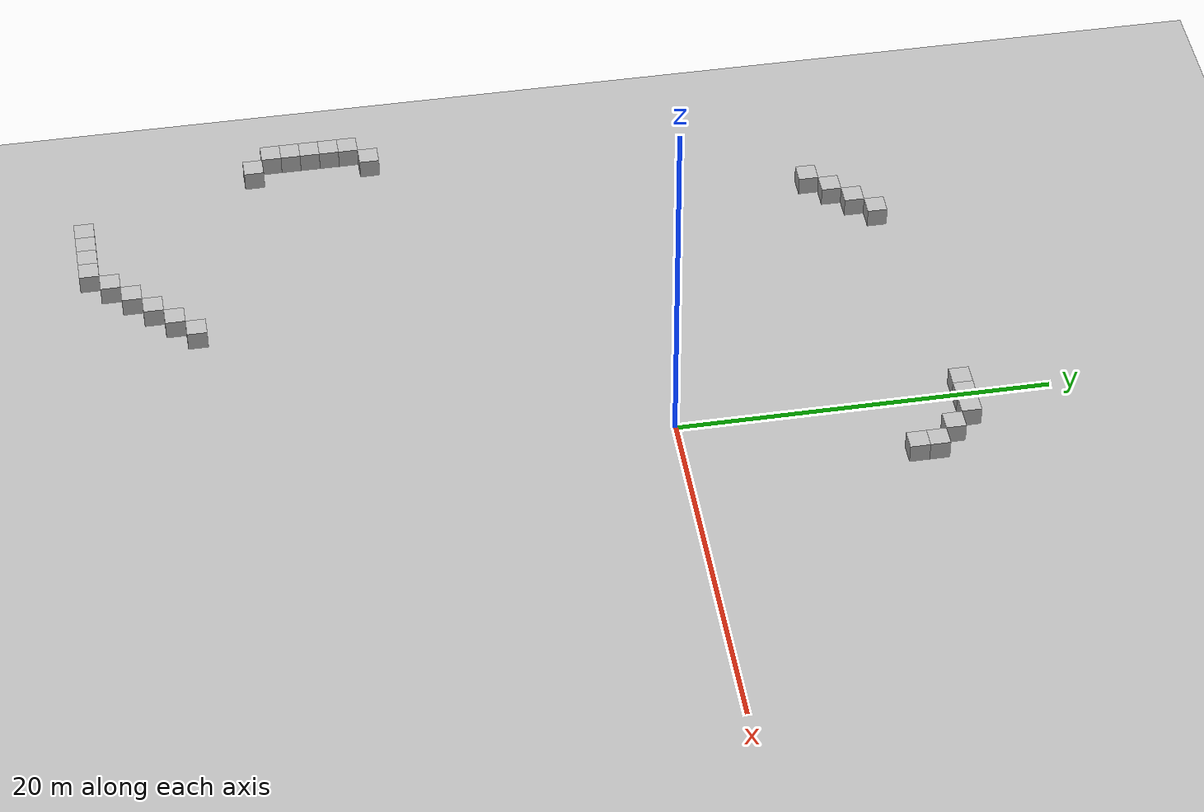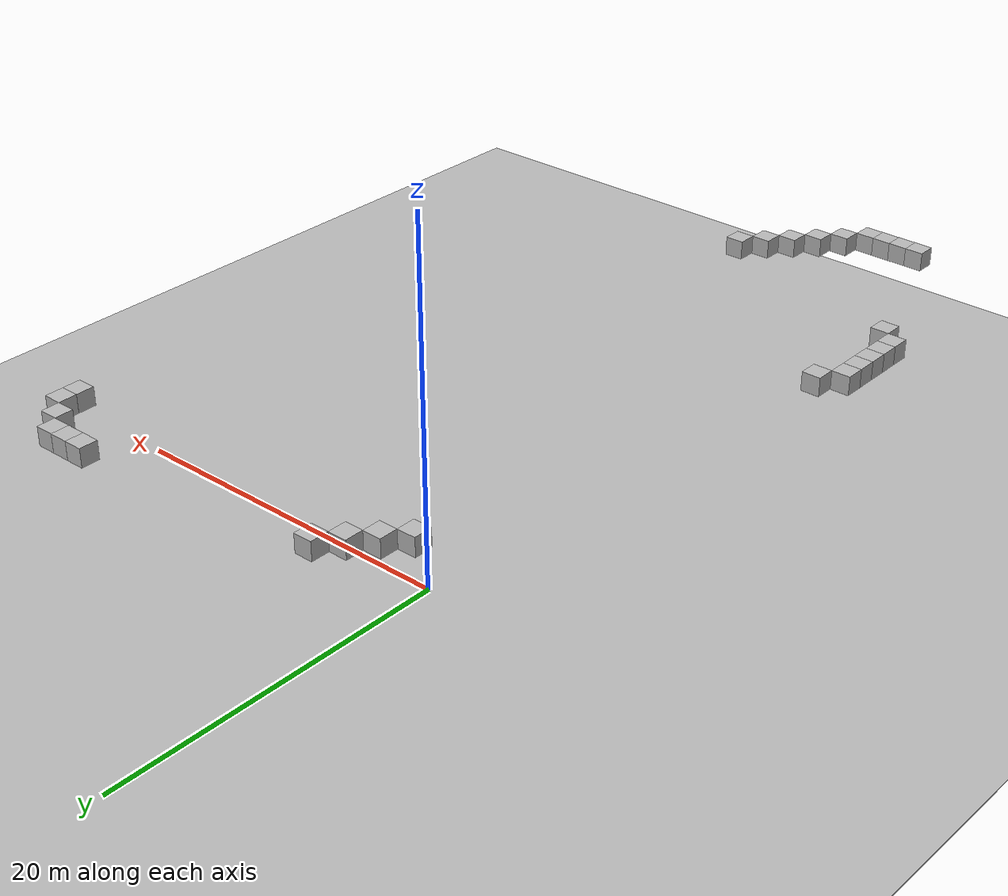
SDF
<sdf version="1.5">
 <world name="default">
  <include><uri>model://sun</uri></include>
  <include><uri>model://floor0</uri></include>
  <model name="obstacle0_1">
   <pose>-4 11 10 0 0 0</pose>
   <link name="obstacle0_1">
    <visual name="visual">
     <geometry><box><size>1 1 1</size></box></geometry>
     <material>
      <script>
       <uri>model://floor0/materials/scripts</uri>
       <uri>model://floor0/materials/textures</uri>
       <name>vrc/floor0</name>
      </script>
     </material>
    </visual>
    <collision name="collision"><geometry><box><size>1 1 1</size></box></geometry></collision>
   </link>
  </model>
  <model name="obstacle0_0">
   <pose>-5 10 10 0 0 0</pose>
   <link name="obstacle0_0">
    <visual name="visual">
     <geometry><box><size>1 1 1</size></box></geometry>
     <material>
      <script>
       <uri>model://floor0/materials/scripts</uri>
       <uri>model://floor0/materials/textures</uri>
       <name>vrc/floor0</name>
      </script>
     </material>
    </visual>
    <collision name="collision"><geometry><box><size>1 1 1</size></box></geometry></collision>
   </link>
  </model>
  <model name="obstacle0_2">
   <pose>-6 9 10 0 0 0</pose>
   <link name="obstacle0_2">
    <visual name="visual">
     <geometry><box><size>1 1 1</size></box></geometry>
     <material>
      <script>
       <uri>model://floor0/materials/scripts</uri>
       <uri>model://floor0/materials/textures</uri>
       <name>vrc/floor0</name>
      </script>
     </material>
    </visual>
    <collision name="collision"><geometry><box><size>1 1 1</size></box></geometry></collision>
   </link>
  </model>
  <model name="obstacle0_3">
   <pose>-7 8 10 0 0 0</pose>
   <link name="obstacle0_3">
    <visual name="visual">
     <geometry><box><size>1 1 1</size></box></geometry>
     <material>
      <script>
       <uri>model://floor0/materials/scripts</uri>
       <uri>model://floor0/materials/textures</uri>
       <name>vrc/floor0</name>
      </script>
     </material>
    </visual>
    <collision name="collision"><geometry><box><size>1 1 1</size></box></geometry></collision>
   </link>
  </model>
  <model name="obstacle1_0">
   <pose>9 12.5 10 0 0 0</pose>
   <link name="obstacle1_0">
    <visual name="visual">
     <geometry><box><size>1 1 1</size></box></geometry>
     <material>
      <script>
       <uri>model://floor0/materials/scripts</uri>
       <uri>model://floor0/materials/textures</uri>
       <name>vrc/floor0</name>
      </script>
     </material>
    </visual>
    <collision name="collision"><geometry><box><size>1 1 1</size></box></geometry></collision>
   </link>
  </model>
  <model name="obstacle1_1">
   <pose>10 12.5 10 0 0 0</pose>
   <link name="obstacle1_1">
    <visual name="visual">
     <geometry><box><size>1 1 1</size></box></geometry>
     <material>
      <script>
       <uri>model://floor0/materials/scripts</uri>
       <uri>model://floor0/materials/textures</uri>
       <name>vrc/floor0</name>
      </script>
     </material>
    </visual>
    <collision name="collision"><geometry><box><size>1 1 1</size></box></geometry></collision>
   </link>
  </model>
  <model name="obstacle1_2">
   <pose>11 12.5 10 0 0 0</pose>
   <link name="obstacle1_2">
    <visual name="visual">
     <geometry><box><size>1 1 1</size></box></geometry>
     <material>
      <script>
       <uri>model://floor0/materials/scripts</uri>
       <uri>model://floor0/materials/textures</uri>
       <name>vrc/floor0</name>
      </script>
     </material>
    </visual>
    <collision name="collision"><geometry><box><size>1 1 1</size></box></geometry></collision>
   </link>
  </model>
  <model name="obstacle1_3">
   <pose>12 11.5 10 0 0 0</pose>
   <link name="obstacle1_3">
    <visual name="visual">
     <geometry><box><size>1 1 1</size></box></geometry>
     <material>
      <script>
       <uri>model://floor0/materials/scripts</uri>
       <uri>model://floor0/materials/textures</uri>
       <name>vrc/floor0</name>
      </script>
     </material>
    </visual>
    <collision name="collision"><geometry><box><size>1 1 1</size></box></geometry></collision>
   </link>
  </model>
  <model name="obstacle1_4">
   <pose>13 10.5 10 0 0 0</pose>
   <link name="obstacle1_4">
    <visual name="visual">
     <geometry><box><size>1 1 1</size></box></geometry>
     <material>
      <script>
       <uri>model://floor0/materials/scripts</uri>
       <uri>model://floor0/materials/textures</uri>
       <name>vrc/floor0</name>
      </script>
     </material>
    </visual>
    <collision name="collision"><geometry><box><size>1 1 1</size></box></geometry></collision>
   </link>
  </model>
  <model name="obstacle1_5">
   <pose>13 9.5 10 0 0 0</pose>
   <link name="obstacle1_5">
    <visual name="visual">
     <geometry><box><size>1 1 1</size></box></geometry>
     <material>
      <script>
       <uri>model://floor0/materials/scripts</uri>
       <uri>model://floor0/materials/textures</uri>
       <name>vrc/floor0</name>
      </script>
     </material>
    </visual>
    <collision name="collision"><geometry><box><size>1 1 1</size></box></geometry></collision>
   </link>
  </model>
  <model name="obstacle2_0">
   <pose>-0.5 -24.25 10 0 0 0</pose>
   <link name="obstacle2_0">
    <visual name="visual">
     <geometry><box><size>1 1 1</size></box></geometry>
     <material>
      <script>
       <uri>model://floor0/materials/scripts</uri>
       <uri>model://floor0/materials/textures</uri>
       <name>vrc/floor0</name>
      </script>
     </material>
    </visual>
    <collision name="collision"><geometry><box><size>1 1 1</size></box></geometry></collision>
   </link>
  </model>
  <model name="obstacle2_1">
   <pose>-1.5 -25.25 10 0 0 0</pose>
   <link name="obstacle2_1">
    <visual name="visual">
     <geometry><box><size>1 1 1</size></box></geometry>
     <material>
      <script>
       <uri>model://floor0/materials/scripts</uri>
       <uri>model://floor0/materials/textures</uri>
       <name>vrc/floor0</name>
      </script>
     </material>
    </visual>
    <collision name="collision"><geometry><box><size>1 1 1</size></box></geometry></collision>
   </link>
  </model>
  <model name="obstacle2_2">
   <pose>-2.5 -26.25 10 0 0 0</pose>
   <link name="obstacle2_2">
    <visual name="visual">
     <geometry><box><size>1 1 1</size></box></geometry>
     <material>
      <script>
       <uri>model://floor0/materials/scripts</uri>
       <uri>model://floor0/materials/textures</uri>
       <name>vrc/floor0</name>
      </script>
     </material>
    </visual>
    <collision name="collision"><geometry><box><size>1 1 1</size></box></geometry></collision>
   </link>
  </model>
  <model name="obstacle2_3">
   <pose>-3.5 -27.25 10 0 0 0</pose>
   <link name="obstacle2_3">
    <visual name="visual">
     <geometry><box><size>1 1 1</size></box></geometry>
     <material>
      <script>
       <uri>model://floor0/materials/scripts</uri>
       <uri>model://floor0/materials/textures</uri>
       <name>vrc/floor0</name>
      </script>
     </material>
    </visual>
    <collision name="collision"><geometry><box><size>1 1 1</size></box></geometry></collision>
   </link>
  </model>
  <model name="obstacle2_4">
   <pose>-4.5 -28.25 10 0 0 0</pose>
   <link name="obstacle2_4">
    <visual name="visual">
     <geometry><box><size>1 1 1</size></box></geometry>
     <material>
      <script>
       <uri>model://floor0/materials/scripts</uri>
       <uri>model://floor0/materials/textures</uri>
       <name>vrc/floor0</name>
      </script>
     </material>
    </visual>
    <collision name="collision"><geometry><box><size>1 1 1</size></box></geometry></collision>
   </link>
  </model>
  <model name="obstacle2_5">
   <pose>-5.5 -29.25 10 0 0 0</pose>
   <link name="obstacle2_5">
    <visual name="visual">
     <geometry><box><size>1 1 1</size></box></geometry>
     <material>
      <script>
       <uri>model://floor0/materials/scripts</uri>
       <uri>model://floor0/materials/textures</uri>
       <name>vrc/floor0</name>
      </script>
     </material>
    </visual>
    <collision name="collision"><geometry><box><size>1 1 1</size></box></geometry></collision>
   </link>
  </model>
  <model name="obstacle2_6">
   <pose>-6.5 -29.25 10 0 0 0</pose>
   <link name="obstacle2_6">
    <visual name="visual">
     <geometry><box><size>1 1 1</size></box></geometry>
     <material>
      <script>
       <uri>model://floor0/materials/scripts</uri>
       <uri>model://floor0/materials/textures</uri>
       <name>vrc/floor0</name>
      </script>
     </material>
    </visual>
    <collision name="collision"><geometry><box><size>1 1 1</size></box></geometry></collision>
   </link>
  </model>
  <model name="obstacle2_7">
   <pose>-7.5 -29.25 10 0 0 0</pose>
   <link name="obstacle2_7">
    <visual name="visual">
     <geometry><box><size>1 1 1</size></box></geometry>
     <material>
      <script>
       <uri>model://floor0/materials/scripts</uri>
       <uri>model://floor0/materials/textures</uri>
       <name>vrc/floor0</name>
      </script>
     </material>
    </visual>
    <collision name="collision"><geometry><box><size>1 1 1</size></box></geometry></collision>
   </link>
  </model>
  <model name="obstacle2_8">
   <pose>-8.5 -29.25 10 0 0 0</pose>
   <link name="obstacle2_8">
    <visual name="visual">
     <geometry><box><size>1 1 1</size></box></geometry>
     <material>
      <script>
       <uri>model://floor0/materials/scripts</uri>
       <uri>model://floor0/materials/textures</uri>
       <name>vrc/floor0</name>
      </script>
     </material>
    </visual>
    <collision name="collision"><geometry><box><size>1 1 1</size></box></geometry></collision>
   </link>
  </model>
  <model name="obstacle3_0">
   <pose>-12 -14.25 10 0 0 0</pose>
   <link name="obstacle3_0">
    <visual name="visual">
     <geometry><box><size>1 1 1</size></box></geometry>
     <material>
      <script>
       <uri>model://floor0/materials/scripts</uri>
       <uri>model://floor0/materials/textures</uri>
       <name>vrc/floor0</name>
      </script>
     </material>
    </visual>
    <collision name="collision"><geometry><box><size>1 1 1</size></box></geometry></collision>
   </link>
  </model>
  <model name="obstacle3_1">
   <pose>-13 -15.25 10 0 0 0</pose>
   <link name="obstacle3_1">
    <visual name="visual">
     <geometry><box><size>1 1 1</size></box></geometry>
     <material>
      <script>
       <uri>model://floor0/materials/scripts</uri>
       <uri>model://floor0/materials/textures</uri>
       <name>vrc/floor0</name>
      </script>
     </material>
    </visual>
    <collision name="collision"><geometry><box><size>1 1 1</size></box></geometry></collision>
   </link>
  </model>
  <model name="obstacle3_2">
   <pose>-13 -16.25 10 0 0 0</pose>
   <link name="obstacle3_2">
    <visual name="visual">
     <geometry><box><size>1 1 1</size></box></geometry>
     <material>
      <script>
       <uri>model://floor0/materials/scripts</uri>
       <uri>model://floor0/materials/textures</uri>
       <name>vrc/floor0</name>
      </script>
     </material>
    </visual>
    <collision name="collision"><geometry><box><size>1 1 1</size></box></geometry></collision>
   </link>
  </model>
  <model name="obstacle3_3">
   <pose>-13 -17.25 10 0 0 0</pose>
   <link name="obstacle3_3">
    <visual name="visual">
     <geometry><box><size>1 1 1</size></box></geometry>
     <material>
      <script>
       <uri>model://floor0/materials/scripts</uri>
       <uri>model://floor0/materials/textures</uri>
       <name>vrc/floor0</name>
      </script>
     </material>
    </visual>
    <collision name="collision"><geometry><box><size>1 1 1</size></box></geometry></collision>
   </link>
  </model>
  <model name="obstacle3_4">
   <pose>-13 -18.25 10 0 0 0</pose>
   <link name="obstacle3_4">
    <visual name="visual">
     <geometry><box><size>1 1 1</size></box></geometry>
     <material>
      <script>
       <uri>model://floor0/materials/scripts</uri>
       <uri>model://floor0/materials/textures</uri>
       <name>vrc/floor0</name>
      </script>
     </material>
    </visual>
    <collision name="collision"><geometry><box><size>1 1 1</size></box></geometry></collision>
   </link>
  </model>
  <model name="obstacle3_5">
   <pose>-13 -19.25 10 0 0 0</pose>
   <link name="obstacle3_5">
    <visual name="visual">
     <geometry><box><size>1 1 1</size></box></geometry>
     <material>
      <script>
       <uri>model://floor0/materials/scripts</uri>
       <uri>model://floor0/materials/textures</uri>
       <name>vrc/floor0</name>
      </script>
     </material>
    </visual>
    <collision name="collision"><geometry><box><size>1 1 1</size></box></geometry></collision>
   </link>
  </model>
  <model name="obstacle3_6">
   <pose>-12 -20.25 10 0 0 0</pose>
   <link name="obstacle3_6">
    <visual name="visual">
     <geometry><box><size>1 1 1</size></box></geometry>
     <material>
      <script>
       <uri>model://floor0/materials/scripts</uri>
       <uri>model://floor0/materials/textures</uri>
       <name>vrc/floor0</name>
      </script>
     </material>
    </visual>
    <collision name="collision"><geometry><box><size>1 1 1</size></box></geometry></collision>
   </link>
  </model>
 </world>
</sdf>

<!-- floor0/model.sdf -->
<sdf version="1.5">
  <model name="floor0">
    <static>true</static>
    <link name="link">
      <collision name="collision">
        <geometry>
          <box>
            <size>200 200 .1</size>
          </box>
        </geometry>
      </collision>
      <visual name="visual">
        <cast_shadows>false</cast_shadows>
        <geometry>
          <box>
            <size>200 200 .1</size>
          </box>
        </geometry>
        <material>
          <script>
            <uri>model://floor0/materials/scripts</uri>
            <uri>model://floor0/materials/textures</uri>
            <name>vrc/floor0</name>
          </script>
        </material>
      </visual>
    </link>
  </model>
</sdf>
